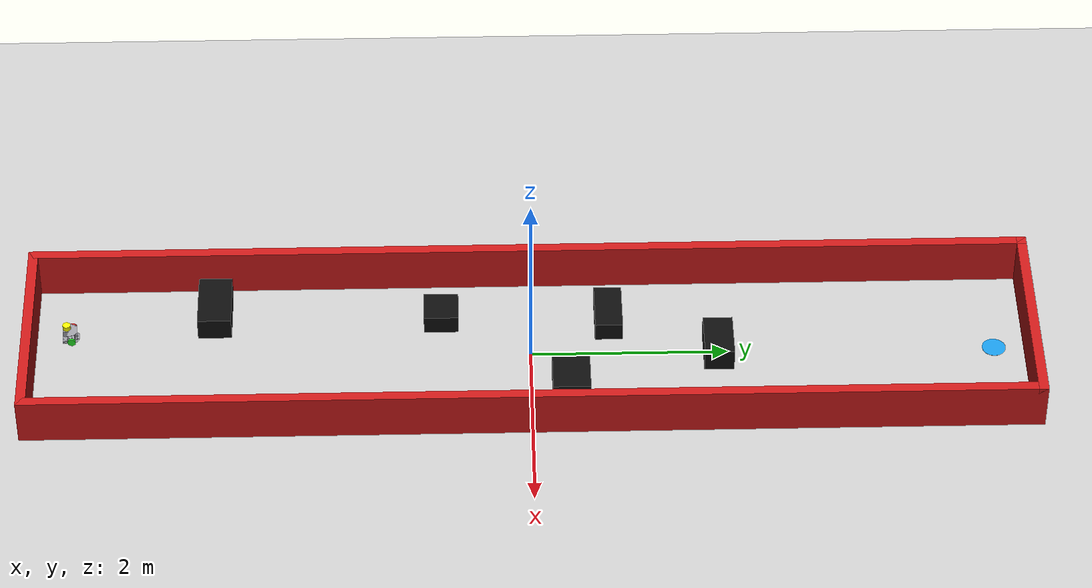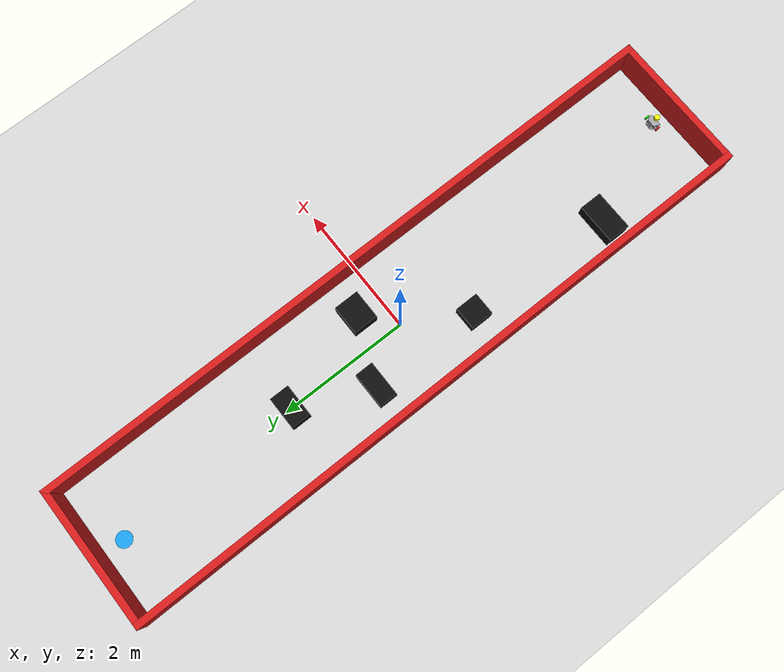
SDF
<?xml version="1.0" ?>
<sdf version="1.9">
  <world name="course_world">
    <physics name="1ms" type="ignored">
      <max_step_size>0.001</max_step_size>
      <real_time_factor>1.0</real_time_factor>
    </physics>

    <plugin filename="gz-sim-physics-system" name="gz::sim::systems::Physics"/>
    <plugin filename="gz-sim-user-commands-system" name="gz::sim::systems::UserCommands"/>
    <plugin filename="gz-sim-scene-broadcaster-system" name="gz::sim::systems::SceneBroadcaster"/>
    <plugin filename="gz-sim-sensors-system" name="gz::sim::systems::Sensors"/>

    <gravity>0 0 -9.8</gravity>

    <light type="directional" name="sun">
      <pose>0 0 10 0 0 0</pose>
      <diffuse>0.8 0.8 0.8 1</diffuse>
      <specular>0.2 0.2 0.2 1</specular>
      <direction>-0.5 0.1 -0.9</direction>
    </light>

    <model name="ground_plane">
      <static>true</static>
      <link name="link">
        <collision name="collision">
          <geometry>
            <plane>
              <normal>0 0 1</normal>
              <size>100 100</size>
            </plane>
          </geometry>
        </collision>
        <visual name="visual">
          <geometry>
            <plane>
              <normal>0 0 1</normal>
              <size>100 100</size>
            </plane>
          </geometry>
          <material>
            <ambient>0.8 0.8 0.8 1</ambient>
            <diffuse>0.8 0.8 0.8 1</diffuse>
          </material>
        </visual>
      </link>
    </model>

    <include>
      <uri>model://course_robot</uri>
      <name>course_robot</name>
      <!-- Start position (blue circle on your map): bottom-center; yaw +π/2 = 90° влево (вид сверху) -->
      <pose>0 -4.6 0.36 0 0 1.5708</pose>
    </include>

    <!-- Modernized RL world: corridor-like arena matching the provided map. -->
    <model name="rl_arena_walls">
      <static>true</static>
      <!-- Arena inner size: 2m (X) x 10m (Y), wall thickness: 0.10m, height: 0.50m -->
      <pose>0 0 0 0 0 0</pose>
      <link name="walls">
        <pose>0 0 0.25 0 0 0</pose>

        <!-- North wall (top) -->
        <collision name="north_collision">
          <pose>0 5.05 0 0 0 0</pose>
          <geometry><box><size>2.2 0.1 0.5</size></box></geometry>
        </collision>
        <visual name="north_visual">
          <pose>0 5.05 0 0 0 0</pose>
          <geometry><box><size>2.2 0.1 0.5</size></box></geometry>
          <material><ambient>0.8 0.1 0.1 1</ambient><diffuse>0.8 0.1 0.1 1</diffuse></material>
        </visual>

        <!-- South wall (bottom) -->
        <collision name="south_collision">
          <pose>0 -5.05 0 0 0 0</pose>
          <geometry><box><size>2.2 0.1 0.5</size></box></geometry>
        </collision>
        <visual name="south_visual">
          <pose>0 -5.05 0 0 0 0</pose>
          <geometry><box><size>2.2 0.1 0.5</size></box></geometry>
          <material><ambient>0.8 0.1 0.1 1</ambient><diffuse>0.8 0.1 0.1 1</diffuse></material>
        </visual>

        <!-- East wall (right) -->
        <collision name="east_collision">
          <pose>1.05 0 0 0 0 0</pose>
          <geometry><box><size>0.1 10.2 0.5</size></box></geometry>
        </collision>
        <visual name="east_visual">
          <pose>1.05 0 0 0 0 0</pose>
          <geometry><box><size>0.1 10.2 0.5</size></box></geometry>
          <material><ambient>0.8 0.1 0.1 1</ambient><diffuse>0.8 0.1 0.1 1</diffuse></material>
        </visual>

        <!-- West wall (left) -->
        <collision name="west_collision">
          <pose>-1.05 0 0 0 0 0</pose>
          <geometry><box><size>0.1 10.2 0.5</size></box></geometry>
        </collision>
        <visual name="west_visual">
          <pose>-1.05 0 0 0 0 0</pose>
          <geometry><box><size>0.1 10.2 0.5</size></box></geometry>
          <material><ambient>0.8 0.1 0.1 1</ambient><diffuse>0.8 0.1 0.1 1</diffuse></material>
        </visual>
      </link>
    </model>

    <!-- Obstacles: smaller footprint for 2m-wide corridor (same names as rl_train obstacle_entity_names). -->
    <model name="obs_3_mid_small">
      <static>true</static>
      <pose>0.0 1.9 0.12 0 0 0</pose>
      <link name="link">
        <collision name="collision"><geometry><box><size>0.5 0.3 0.24</size></box></geometry></collision>
        <visual name="visual">
          <geometry><box><size>0.5 0.3 0.24</size></box></geometry>
          <material><ambient>0.05 0.05 0.05 1</ambient><diffuse>0.05 0.05 0.05 1</diffuse></material>
        </visual>
      </link>
    </model>

    <model name="obs_4_mid_left">
      <static>true</static>
      <pose>-0.48 0.8 0.10 0 0 0</pose>
      <link name="link">
        <collision name="collision"><geometry><box><size>0.55 0.28 0.2</size></box></geometry></collision>
        <visual name="visual">
          <geometry><box><size>0.55 0.28 0.2</size></box></geometry>
          <material><ambient>0.05 0.05 0.05 1</ambient><diffuse>0.05 0.05 0.05 1</diffuse></material>
        </visual>
      </link>
    </model>

    <model name="obs_5_mid_right">
      <static>true</static>
      <pose>0.48 0.4 0.12 0 0 0</pose>
      <link name="link">
        <collision name="collision"><geometry><box><size>0.45 0.38 0.24</size></box></geometry></collision>
        <visual name="visual">
          <geometry><box><size>0.45 0.38 0.24</size></box></geometry>
          <material><ambient>0.05 0.05 0.05 1</ambient><diffuse>0.05 0.05 0.05 1</diffuse></material>
        </visual>
      </link>
    </model>

    <model name="obs_6_lower_left_small">
      <static>true</static>
      <pose>-0.52 -0.9 0.10 0 0 0</pose>
      <link name="link">
        <collision name="collision"><geometry><box><size>0.35 0.35 0.2</size></box></geometry></collision>
        <visual name="visual">
          <geometry><box><size>0.35 0.35 0.2</size></box></geometry>
          <material><ambient>0.05 0.05 0.05 1</ambient><diffuse>0.05 0.05 0.05 1</diffuse></material>
        </visual>
      </link>
    </model>

    <model name="obs_8_bottom_left">
      <static>true</static>
      <pose>-0.62 -3.2 0.12 0 0 0</pose>
      <link name="link">
        <collision name="collision"><geometry><box><size>0.62 0.34 0.24</size></box></geometry></collision>
        <visual name="visual">
          <geometry><box><size>0.62 0.34 0.24</size></box></geometry>
          <material><ambient>0.05 0.05 0.05 1</ambient><diffuse>0.05 0.05 0.05 1</diffuse></material>
        </visual>
      </link>
    </model>

    <!-- Finish marker (top-center). Purely visual, no collision. -->
    <model name="rl_finish_marker">
      <static>true</static>
      <pose>0 4.7 0.001 0 0 0</pose>
      <link name="link">
        <visual name="visual">
          <geometry><cylinder><radius>0.12</radius><length>0.002</length></cylinder></geometry>
          <material><ambient>0.1 0.6 0.9 1</ambient><diffuse>0.1 0.6 0.9 1</diffuse></material>
        </visual>
      </link>
    </model>
  </world>
</sdf>

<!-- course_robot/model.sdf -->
<!-- SDF 1.9: явные фреймы (__model__, relative_to), иначе в gz-sim колёса с pose в фрейме модели + joint к base_link часто «разъезжаются». -->
<sdf version="1.9">
  <model name="course_robot">
    <static>false</static>
    <!-- Поворот делаем на уровне визуала/корпуса (см. base_link visual/collision), чтобы колёса остались как были. -->
    <pose>0 0 0 0 0 0</pose>
    <link name="course_robot_base_link">
      <!-- Совпадает с child_frame_id DiffDrive и корневым линком в course_robot.urdf (RViz без TF Prefix). -->
      <!-- Лёгкий сдвиг, если в CAD низ деталей ниже нуля link. Корпус «висит» — уменьшите z (например 0.05). -->
      <pose relative_to="__model__">0 0 -0.02 0 0 0</pose>
      <inertial>
        <mass>5.0</mass>
        <inertia>
          <ixx>0.2</ixx>
          <iyy>0.2</iyy>
          <izz>0.2</izz>
          <ixy>0</ixy>
          <ixz>0</ixz>
          <iyz>0</iyz>
        </inertia>
      </inertial>
      <!-- Простейшая коллизия корпуса (без STL) -->
      <collision name="chassis_col">
        <pose>0 0 0.12 0 0 1.5708</pose>
        <geometry>
          <box>
            <size>0.38 0.20 0.24</size>
          </box>
        </geometry>
        <surface>
          <friction>
            <ode>
              <mu>1.0</mu>
              <mu2>1.0</mu2>
            </ode>
          </friction>
        </surface>
      </collision>
      <visual name="platforma">
        <pose>0 0 0 0 0 1.5708</pose>
        <material>
          <ambient>0.48 0.48 0.5 1</ambient>
          <diffuse>0.62 0.62 0.65 1</diffuse>
          <specular>0.25 0.25 0.27 1</specular>
        </material>
        <geometry>
          <mesh>
            <uri>model://course_robot/meshes/Platforma.STL</uri>
            <scale>1 1 1</scale>
          </mesh>
        </geometry>
      </visual>
      <visual name="etaj_2">
        <!-- Подъём только этого меша вдоль Z base_link (м). Больше — увеличьте третье число. -->
        <pose>0 0 0.1 0 0 1.5708</pose>
        <material>
          <ambient>0.48 0.48 0.5 1</ambient>
          <diffuse>0.62 0.62 0.65 1</diffuse>
          <specular>0.25 0.25 0.27 1</specular>
        </material>
        <geometry>
          <mesh>
            <uri>model://course_robot/meshes/etaj_2.STL</uri>
            <scale>1 1 1</scale>
          </mesh>
        </geometry>
      </visual>
      <visual name="motor_leviy">
        <pose>0 0 0 0 0 1.5708</pose>
        <material>
          <ambient>0.4 0.4 0.42 1</ambient>
          <diffuse>0.5 0.5 0.52 1</diffuse>
          <specular>0.2 0.2 0.2 1</specular>
        </material>
        <geometry>
          <mesh>
            <uri>model://course_robot/meshes/Motor_leviy.STL</uri>
            <scale>1 1 1</scale>
          </mesh>
        </geometry>
      </visual>
      <visual name="motor_praviy">
        <pose>0 0 0 0 0 1.5708</pose>
        <material>
          <ambient>0.4 0.4 0.42 1</ambient>
          <diffuse>0.5 0.5 0.52 1</diffuse>
          <specular>0.2 0.2 0.2 1</specular>
        </material>
        <geometry>
          <mesh>
            <uri>model://course_robot/meshes/Motor_praviy.STL</uri>
            <scale>1 1 1</scale>
          </mesh>
        </geometry>
      </visual>
      <visual name="sharik_levo">
        <pose>0 0 0 0 0 1.5708</pose>
        <material>
          <ambient>0.35 0.35 0.38 1</ambient>
          <diffuse>0.45 0.45 0.48 1</diffuse>
          <specular>0.15 0.15 0.15 1</specular>
        </material>
        <geometry>
          <mesh>
            <uri>model://course_robot/meshes/Sharik_levo.STL</uri>
            <scale>1 1 1</scale>
          </mesh>
        </geometry>
      </visual>
      <visual name="sharik_niz">
        <pose>0 0 0 0 0 1.5708</pose>
        <material>
          <ambient>0.35 0.35 0.38 1</ambient>
          <diffuse>0.45 0.45 0.48 1</diffuse>
          <specular>0.15 0.15 0.15 1</specular>
        </material>
        <geometry>
          <mesh>
            <uri>model://course_robot/meshes/Sharik_niz.STL</uri>
            <scale>1 1 1</scale>
          </mesh>
        </geometry>
      </visual>
      <visual name="sharik_pravo">
        <pose>0 0 0 0 0 1.5708</pose>
        <material>
          <ambient>0.35 0.35 0.38 1</ambient>
          <diffuse>0.45 0.45 0.48 1</diffuse>
          <specular>0.15 0.15 0.15 1</specular>
        </material>
        <geometry>
          <mesh>
            <uri>model://course_robot/meshes/Sharik_pravo.STL</uri>
            <scale>1 1 1</scale>
          </mesh>
        </geometry>
      </visual>
    </link>

    <!-- Физические колёса: цилиндр roll 90° (ось вдоль Y), revolute вокруг Y; z — центр колеса от base_link. -->
    <link name="left_wheel">
      <pose relative_to="course_robot_base_link">0 0.11 0.04 0 0 0</pose>
      <inertial>
        <mass>0.4</mass>
        <inertia>
          <ixx>0.0006</ixx>
          <iyy>0.0006</iyy>
          <izz>0.0006</izz>
          <ixy>0</ixy>
          <ixz>0</ixz>
          <iyz>0</iyz>
        </inertia>
      </inertial>
      <collision name="left_wheel_col">
        <pose>0 0 0 1.5708 0 0</pose>
        <geometry>
          <cylinder>
            <radius>0.04</radius>
            <length>0.02</length>
          </cylinder>
        </geometry>
        <surface>
          <friction>
            <ode>
              <mu>1.2</mu>
              <mu2>1.2</mu2>
            </ode>
          </friction>
        </surface>
      </collision>
      <visual name="left_wheel_vis">
        <pose>0 0 0 1.5708 0 0</pose>
        <material>
          <ambient>0.85 0.1 0.1 1</ambient>
          <diffuse>0.9 0.15 0.15 1</diffuse>
        </material>
        <geometry>
          <cylinder>
            <radius>0.04</radius>
            <length>0.02</length>
          </cylinder>
        </geometry>
      </visual>
    </link>

    <link name="right_wheel">
      <pose relative_to="course_robot_base_link">0 -0.11 0.04 0 0 0</pose>
      <inertial>
        <mass>0.4</mass>
        <inertia>
          <ixx>0.0006</ixx>
          <iyy>0.0006</iyy>
          <izz>0.0006</izz>
          <ixy>0</ixy>
          <ixz>0</ixz>
          <iyz>0</iyz>
        </inertia>
      </inertial>
      <collision name="right_wheel_col">
        <pose>0 0 0 1.5708 0 0</pose>
        <geometry>
          <cylinder>
            <radius>0.04</radius>
            <length>0.02</length>
          </cylinder>
        </geometry>
        <surface>
          <friction>
            <ode>
              <mu>1.2</mu>
              <mu2>1.2</mu2>
            </ode>
          </friction>
        </surface>
      </collision>
      <visual name="right_wheel_vis">
        <pose>0 0 0 1.5708 0 0</pose>
        <material>
          <ambient>0.1 0.85 0.1 1</ambient>
          <diffuse>0.15 0.9 0.15 1</diffuse>
        </material>
        <geometry>
          <cylinder>
            <radius>0.04</radius>
            <length>0.02</length>
          </cylinder>
        </geometry>
      </visual>
    </link>

    <joint name="left_wheel_joint" type="revolute">
      <parent>course_robot_base_link</parent>
      <child>left_wheel</child>
      <axis>
        <xyz>0 1 0</xyz>
      </axis>
    </joint>

    <joint name="right_wheel_joint" type="revolute">
      <parent>course_robot_base_link</parent>
      <child>right_wheel</child>
      <axis>
        <xyz>0 1 0</xyz>
      </axis>
    </joint>

    <!-- 3D lidar отдельным линком на "капоте" робота -->
    <link name="lidar_link">
      <pose relative_to="course_robot_base_link">-0.05 0 0.15 0 0 0</pose>
      <inertial>
        <mass>0.05</mass>
        <inertia>
          <ixx>0.00001</ixx>
          <iyy>0.00001</iyy>
          <izz>0.00001</izz>
          <ixy>0</ixy>
          <ixz>0</ixz>
          <iyz>0</iyz>
        </inertia>
      </inertial>

      <visual name="lidar_vis">
        <geometry>
          <cylinder>
            <radius>0.04</radius>
            <length>0.05</length>
          </cylinder>
        </geometry>
        <material>
          <ambient>1.0 1.0 0.0 1</ambient>
          <diffuse>1.0 1.0 0.0 1</diffuse>
        </material>
      </visual>

      <sensor name="lidar_3d" type="gpu_lidar">
        <pose>0 0 0 0 0 0</pose>
        <always_on>1</always_on>
        <update_rate>20</update_rate>
        <visualize>true</visualize>

        <ray>
          <scan>
            <horizontal>
              <samples>240</samples>
              <min_angle>-1.57</min_angle>
              <max_angle>1.57</max_angle>
            </horizontal>
            <vertical>
              <samples>10</samples>
              <min_angle>-0.20</min_angle>
              <max_angle>0.10</max_angle>
            </vertical>
          </scan>
          <range>
            <min>0.02</min>
            <max>20.0</max>
            <resolution>0.01</resolution>
          </range>
        </ray>
      </sensor>
    </link>

    <!-- IMU отдельным линком для LIO-SAM -->
    <link name="imu_link">
      <pose relative_to="course_robot_base_link">0 0 0.10 0 0 0</pose>
      <inertial>
        <mass>0.01</mass>
        <inertia>
          <!-- Небольшой "кубик" ~2см: I = 1/12*m*(b^2+c^2) -->
          <ixx>0.00000067</ixx>
          <iyy>0.00000067</iyy>
          <izz>0.00000067</izz>
          <ixy>0</ixy>
          <ixz>0</ixz>
          <iyz>0</iyz>
        </inertia>
      </inertial>

      <sensor name="imu" type="imu">
        <pose>0 0 0 0 0 0</pose>
        <always_on>1</always_on>
        <update_rate>100</update_rate>

        <imu>
          <angular_velocity>
            <x>
              <noise type="gaussian">
                <mean>0</mean>
                <stddev>0.0002</stddev>
              </noise>
            </x>
            <y>
              <noise type="gaussian">
                <mean>0</mean>
                <stddev>0.0002</stddev>
              </noise>
            </y>
            <z>
              <noise type="gaussian">
                <mean>0</mean>
                <stddev>0.0002</stddev>
              </noise>
            </z>
          </angular_velocity>
          <linear_acceleration>
            <x>
              <noise type="gaussian">
                <mean>0</mean>
                <stddev>0.002</stddev>
              </noise>
            </x>
            <y>
              <noise type="gaussian">
                <mean>0</mean>
                <stddev>0.002</stddev>
              </noise>
            </y>
            <z>
              <noise type="gaussian">
                <mean>0</mean>
                <stddev>0.002</stddev>
              </noise>
            </z>
          </linear_acceleration>
        </imu>
      </sensor>
    </link>

    <joint name="imu_joint" type="fixed">
      <parent>course_robot_base_link</parent>
      <child>imu_link</child>
    </joint>

    <joint name="lidar_joint" type="fixed">
      <parent>course_robot_base_link</parent>
      <child>lidar_link</child>
    </joint>

    <!-- Дифференциальный привод: публикует odometry и принимает cmd_vel -->
    <plugin filename="gz-sim-diff-drive-system" name="gz::sim::systems::DiffDrive">
      <left_joint>left_wheel_joint</left_joint>
      <right_joint>right_wheel_joint</right_joint>
      <wheel_separation>0.22</wheel_separation>
      <wheel_radius>0.04</wheel_radius>
      <odom_publish_frequency>50</odom_publish_frequency>
      <!-- В ROS TF odom→base публикует odom_to_tf.py; мост /tf из gz отключён (см. ros_gz_course_robot.yaml). -->
      <publish_tf>false</publish_tf>
      <!-- Уникальные имена, чтобы не пересекаться с vehicle_blue / другими base_link в RViz -->
      <odom_frame_id>course_robot_odom</odom_frame_id>
      <child_frame_id>course_robot_base_link</child_frame_id>
    </plugin>

    <!-- Sensors (gz-sim-sensors-system) должен быть один на мир — см. course_robot_world.sdf.
         Второй экземпляр на модели даёт Ogre::ItemIdentityException (PbsMaterialsShadowNode already exists). -->
  </model>
</sdf>
